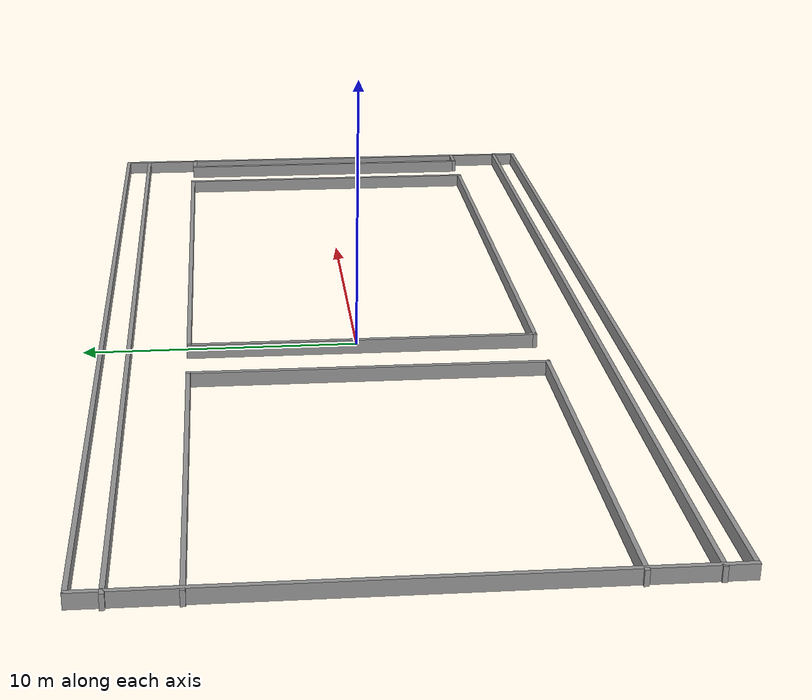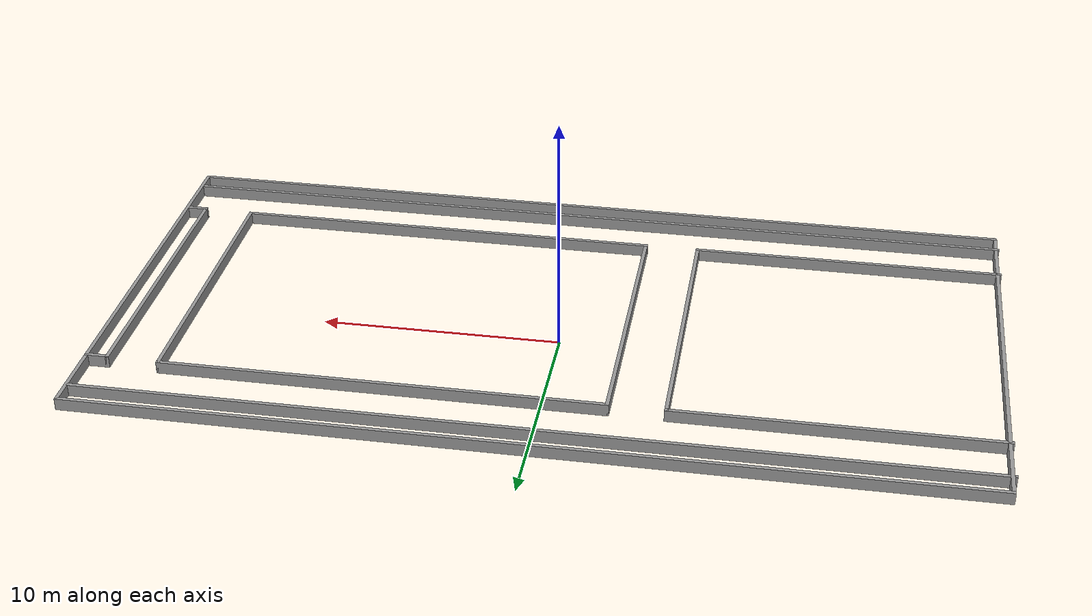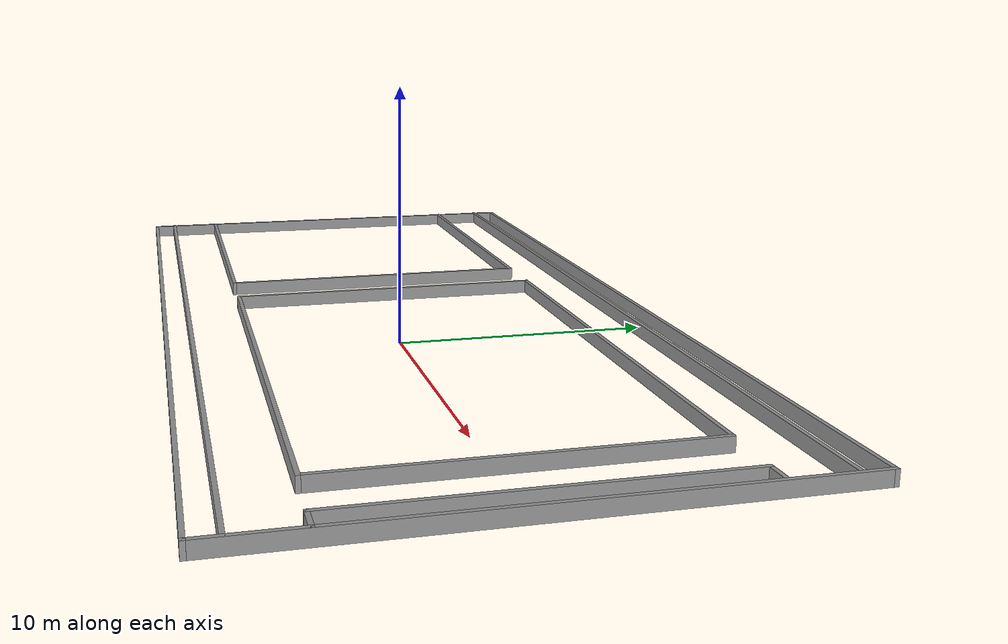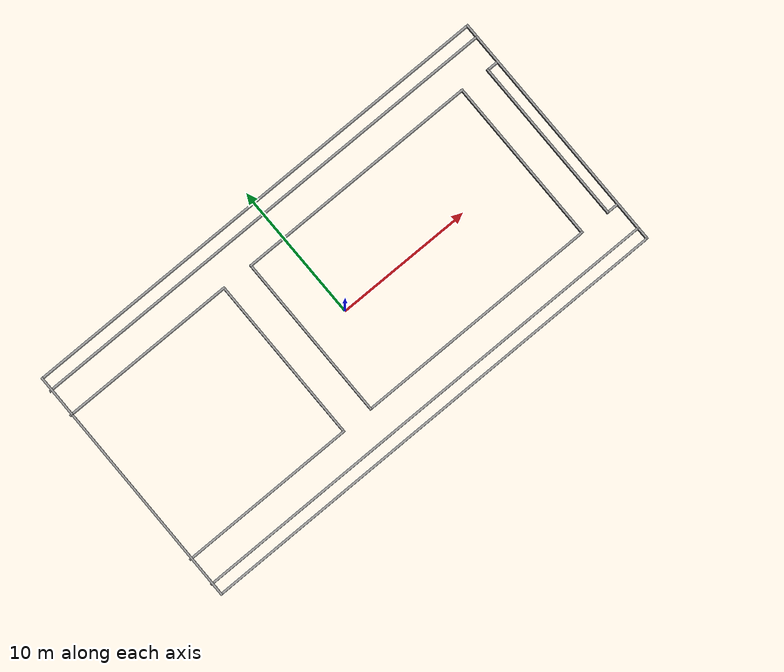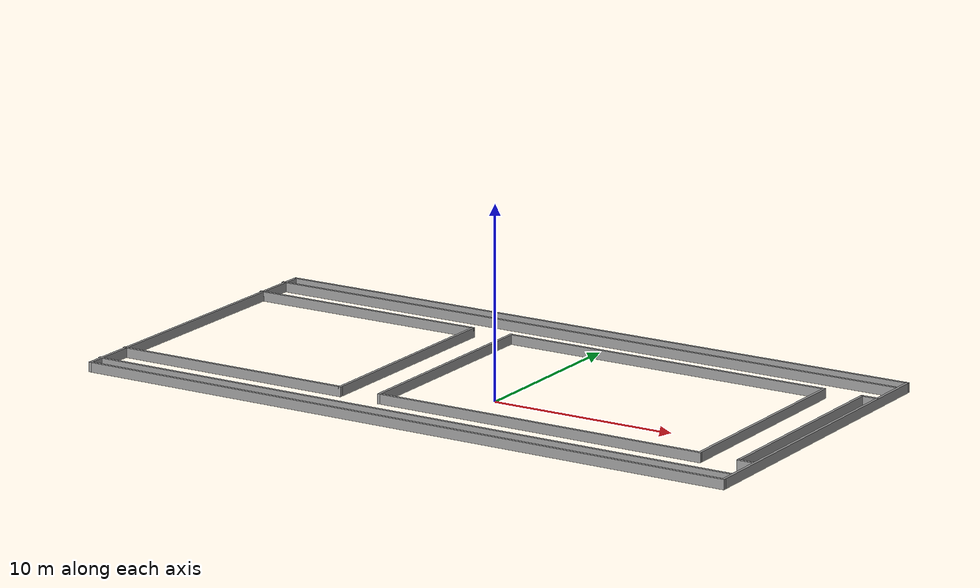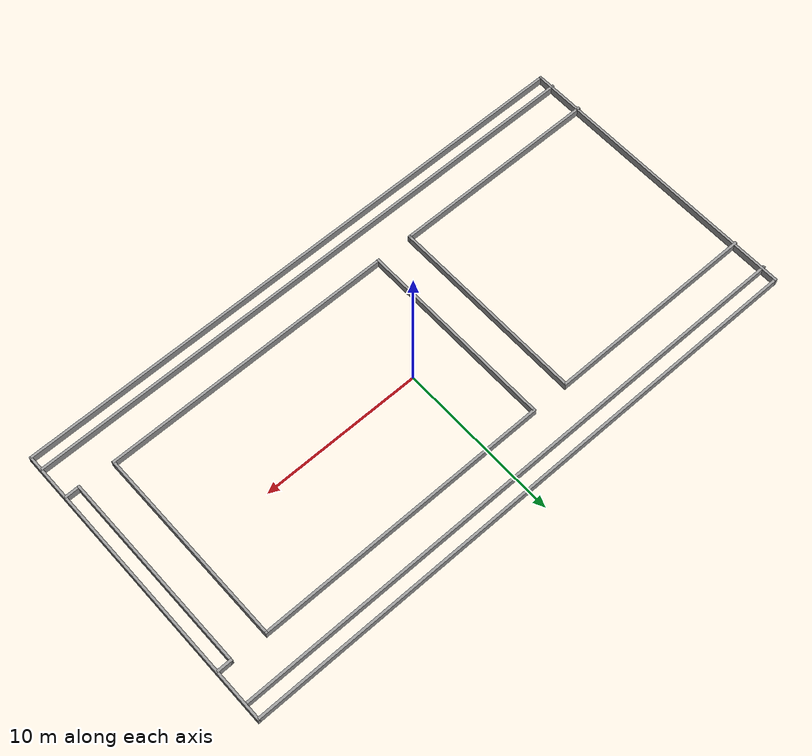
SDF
<?xml version='1.0'?>
<sdf version='1.7'>
  <model name='vfeld.world'>
    <pose>-0.001103 0.05847 0 0 -0 0</pose>
    <link name='Wall_10'>
      <collision name='Wall_10_Collision'>
        <geometry>
          <box>
            <size>18.25 0.15 0.5</size>
          </box>
        </geometry>
        <pose>0 0 1.25 0 -0 0</pose>
      </collision>
      <visual name='Wall_10_Visual'>
        <pose>0 0 1.25 0 -0 0</pose>
        <geometry>
          <box>
            <size>18.25 0.15 0.5</size>
          </box>
        </geometry>
        <material>
          <script>
            <uri>file://media/materials/scripts/gazebo.material</uri>
            <name>Gazebo/Grey</name>
          </script>
          <ambient>1 1 1 1</ambient>
        </material>
        <meta>
          <layer>0</layer>
        </meta>
      </visual>
      <pose>17.9754 0 0 0 -0 -1.5708</pose>
    </link>
    <link name='Wall_11'>
      <collision name='Wall_11_Collision'>
        <geometry>
          <box>
            <size>36 0.15 0.5</size>
          </box>
        </geometry>
        <pose>0 0 1.25 0 -0 0</pose>
      </collision>
      <visual name='Wall_11_Visual'>
        <pose>0 0 1.25 0 -0 0</pose>
        <geometry>
          <box>
            <size>36 0.15 0.5</size>
          </box>
        </geometry>
        <material>
          <script>
            <uri>file://media/materials/scripts/gazebo.material</uri>
            <name>Gazebo/Grey</name>
          </script>
          <ambient>1 1 1 1</ambient>
        </material>
        <meta>
          <layer>0</layer>
        </meta>
      </visual>
      <pose>0.050444 -9.05 0 0 -0 3.14159</pose>
    </link>
    <link name='Wall_12'>
      <collision name='Wall_12_Collision'>
        <geometry>
          <box>
            <size>18.25 0.15 0.5</size>
          </box>
        </geometry>
        <pose>0 0 1.25 0 -0 0</pose>
      </collision>
      <visual name='Wall_12_Visual'>
        <pose>0 0 1.25 0 -0 0</pose>
        <geometry>
          <box>
            <size>18.25 0.15 0.5</size>
          </box>
        </geometry>
        <material>
          <script>
            <uri>file://media/materials/scripts/gazebo.material</uri>
            <name>Gazebo/Grey</name>
          </script>
          <ambient>1 1 1 1</ambient>
        </material>
        <meta>
          <layer>0</layer>
        </meta>
      </visual>
      <pose>-17.8746 0 0 0 -0 1.5708</pose>
    </link>
    <link name='Wall_13'>
      <collision name='Wall_13_Collision'>
        <geometry>
          <box>
            <size>36 0.15 0.5</size>
          </box>
        </geometry>
        <pose>0 0 1.25 0 -0 0</pose>
      </collision>
      <visual name='Wall_13_Visual'>
        <pose>0 0 1.25 0 -0 0</pose>
        <geometry>
          <box>
            <size>36 0.15 0.5</size>
          </box>
        </geometry>
        <material>
          <script>
            <uri>file://media/materials/scripts/gazebo.material</uri>
            <name>Gazebo/Grey</name>
          </script>
          <ambient>1 1 1 1</ambient>
        </material>
        <meta>
          <layer>0</layer>
        </meta>
      </visual>
      <pose>0.050444 9.05 0 0 -0 0</pose>
    </link>
    <link name='Wall_15'>
      <collision name='Wall_15_Collision'>
        <geometry>
          <box>
            <size>36 0.15 0.5</size>
          </box>
        </geometry>
        <pose>0 0 1.25 0 -0 0</pose>
      </collision>
      <visual name='Wall_15_Visual'>
        <pose>0 0 1.25 0 -0 0</pose>
        <geometry>
          <box>
            <size>36 0.15 0.5</size>
          </box>
        </geometry>
        <material>
          <script>
            <uri>file://media/materials/scripts/gazebo.material</uri>
            <name>Gazebo/Grey</name>
          </script>
          <ambient>1 1 1 1</ambient>
        </material>
        <meta>
          <layer>0</layer>
        </meta>
      </visual>
      <pose>-0.050445 8.09916 0 0 -0 0</pose>
    </link>
    <link name='Wall_17'>
      <collision name='Wall_17_Collision'>
        <geometry>
          <box>
            <size>13 0.15 0.5</size>
          </box>
        </geometry>
        <pose>0 0 1.25 0 -0 0</pose>
      </collision>
      <visual name='Wall_17_Visual'>
        <pose>0 0 1.25 0 -0 0</pose>
        <geometry>
          <box>
            <size>13 0.15 0.5</size>
          </box>
        </geometry>
        <material>
          <script>
            <uri>file://media/materials/scripts/gazebo.material</uri>
            <name>Gazebo/Grey</name>
          </script>
          <ambient>1 1 1 1</ambient>
        </material>
        <meta>
          <layer>0</layer>
        </meta>
      </visual>
      <pose>-11.5363 6.04108 0 0 -0 0</pose>
    </link>
    <link name='Wall_18'>
      <collision name='Wall_18_Collision'>
        <geometry>
          <box>
            <size>12.25 0.15 0.5</size>
          </box>
        </geometry>
        <pose>0 0 1.25 0 -0 0</pose>
      </collision>
      <visual name='Wall_18_Visual'>
        <pose>0 0 1.25 0 -0 0</pose>
        <geometry>
          <box>
            <size>12.25 0.15 0.5</size>
          </box>
        </geometry>
        <material>
          <script>
            <uri>file://media/materials/scripts/gazebo.material</uri>
            <name>Gazebo/Grey</name>
          </script>
          <ambient>1 1 1 1</ambient>
        </material>
        <meta>
          <layer>0</layer>
        </meta>
      </visual>
      <pose>-5.11132 -0.008923 0 0 -0 -1.5708</pose>
    </link>
    <link name='Wall_19'>
      <collision name='Wall_19_Collision'>
        <geometry>
          <box>
            <size>13 0.15 0.5</size>
          </box>
        </geometry>
        <pose>0 0 1.25 0 -0 0</pose>
      </collision>
      <visual name='Wall_19_Visual'>
        <pose>0 0 1.25 0 -0 0</pose>
        <geometry>
          <box>
            <size>13 0.15 0.5</size>
          </box>
        </geometry>
        <material>
          <script>
            <uri>file://media/materials/scripts/gazebo.material</uri>
            <name>Gazebo/Grey</name>
          </script>
          <ambient>1 1 1 1</ambient>
        </material>
        <meta>
          <layer>0</layer>
        </meta>
      </visual>
      <pose>-11.5363 -6.05892 0 0 -0 3.14159</pose>
    </link>
    <link name='Wall_21'>
      <collision name='Wall_21_Collision'>
        <geometry>
          <box>
            <size>36 0.15 0.5</size>
          </box>
        </geometry>
        <pose>0 0 1.25 0 -0 0</pose>
      </collision>
      <visual name='Wall_21_Visual'>
        <pose>0 0 1.25 0 -0 0</pose>
        <geometry>
          <box>
            <size>36 0.15 0.5</size>
          </box>
        </geometry>
        <material>
          <script>
            <uri>file://media/materials/scripts/gazebo.material</uri>
            <name>Gazebo/Grey</name>
          </script>
          <ambient>1 1 1 1</ambient>
        </material>
        <meta>
          <layer>0</layer>
        </meta>
      </visual>
      <pose>-0.01293 -8.15911 0 0 -0 0</pose>
    </link>
    <link name='Wall_23'>
      <collision name='Wall_23_Collision'>
        <geometry>
          <box>
            <size>1 0.15 0.5</size>
          </box>
        </geometry>
        <pose>0 0 1.25 0 -0 0</pose>
      </collision>
      <visual name='Wall_23_Visual'>
        <pose>0 0 1.25 0 -0 0</pose>
        <geometry>
          <box>
            <size>1 0.15 0.5</size>
          </box>
        </geometry>
        <material>
          <script>
            <uri>file://media/materials/scripts/gazebo.material</uri>
            <name>Gazebo/Grey</name>
          </script>
          <ambient>1 1 1 1</ambient>
        </material>
        <meta>
          <layer>0</layer>
        </meta>
      </visual>
      <pose>17.5469 -6.12383 0 0 -0 3.14159</pose>
    </link>
    <link name='Wall_24'>
      <collision name='Wall_24_Collision'>
        <geometry>
          <box>
            <size>12.25 0.15 0.5</size>
          </box>
        </geometry>
        <pose>0 0 1.25 0 -0 0</pose>
      </collision>
      <visual name='Wall_24_Visual'>
        <pose>0 0 1.25 0 -0 0</pose>
        <geometry>
          <box>
            <size>12.25 0.15 0.5</size>
          </box>
        </geometry>
        <material>
          <script>
            <uri>file://media/materials/scripts/gazebo.material</uri>
            <name>Gazebo/Grey</name>
          </script>
          <ambient>1 1 1 1</ambient>
        </material>
        <meta>
          <layer>0</layer>
        </meta>
      </visual>
      <pose>17.1219 -0.07383 0 0 -0 1.5708</pose>
    </link>
    <link name='Wall_25'>
      <collision name='Wall_25_Collision'>
        <geometry>
          <box>
            <size>1 0.15 0.5</size>
          </box>
        </geometry>
        <pose>0 0 1.25 0 -0 0</pose>
      </collision>
      <visual name='Wall_25_Visual'>
        <pose>0 0 1.25 0 -0 0</pose>
        <geometry>
          <box>
            <size>1 0.15 0.5</size>
          </box>
        </geometry>
        <material>
          <script>
            <uri>file://media/materials/scripts/gazebo.material</uri>
            <name>Gazebo/Grey</name>
          </script>
          <ambient>1 1 1 1</ambient>
        </material>
        <meta>
          <layer>0</layer>
        </meta>
      </visual>
      <pose>17.5469 5.97617 0 0 -0 0</pose>
    </link>
    <link name='Wall_27'>
      <collision name='Wall_27_Collision'>
        <geometry>
          <box>
            <size>12.25 0.15 0.5</size>
          </box>
        </geometry>
        <pose>0 0 1.25 0 -0 0</pose>
      </collision>
      <visual name='Wall_27_Visual'>
        <pose>0 0 1.25 0 -0 0</pose>
        <geometry>
          <box>
            <size>12.25 0.15 0.5</size>
          </box>
        </geometry>
        <material>
          <script>
            <uri>file://media/materials/scripts/gazebo.material</uri>
            <name>Gazebo/Grey</name>
          </script>
          <ambient>1 1 1 1</ambient>
        </material>
        <meta>
          <layer>0</layer>
        </meta>
      </visual>
      <pose>15.0009 -0.008923 0 0 -0 -1.5708</pose>
    </link>
    <link name='Wall_28'>
      <collision name='Wall_28_Collision'>
        <geometry>
          <box>
            <size>18 0.15 0.5</size>
          </box>
        </geometry>
        <pose>0 0 1.25 0 -0 0</pose>
      </collision>
      <visual name='Wall_28_Visual'>
        <pose>0 0 1.25 0 -0 0</pose>
        <geometry>
          <box>
            <size>18 0.15 0.5</size>
          </box>
        </geometry>
        <material>
          <script>
            <uri>file://media/materials/scripts/gazebo.material</uri>
            <name>Gazebo/Grey</name>
          </script>
          <ambient>1 1 1 1</ambient>
        </material>
        <meta>
          <layer>0</layer>
        </meta>
      </visual>
      <pose>6.0759 -6.05892 0 0 -0 3.14159</pose>
    </link>
    <link name='Wall_29'>
      <collision name='Wall_29_Collision'>
        <geometry>
          <box>
            <size>12.25 0.15 0.5</size>
          </box>
        </geometry>
        <pose>0 0 1.25 0 -0 0</pose>
      </collision>
      <visual name='Wall_29_Visual'>
        <pose>0 0 1.25 0 -0 0</pose>
        <geometry>
          <box>
            <size>12.25 0.15 0.5</size>
          </box>
        </geometry>
        <material>
          <script>
            <uri>file://media/materials/scripts/gazebo.material</uri>
            <name>Gazebo/Grey</name>
          </script>
          <ambient>1 1 1 1</ambient>
        </material>
        <meta>
          <layer>0</layer>
        </meta>
      </visual>
      <pose>-2.8491 -0.008923 0 0 -0 1.5708</pose>
    </link>
    <link name='Wall_30'>
      <collision name='Wall_30_Collision'>
        <geometry>
          <box>
            <size>18 0.15 0.5</size>
          </box>
        </geometry>
        <pose>0 0 1.25 0 -0 0</pose>
      </collision>
      <visual name='Wall_30_Visual'>
        <pose>0 0 1.25 0 -0 0</pose>
        <geometry>
          <box>
            <size>18 0.15 0.5</size>
          </box>
        </geometry>
        <material>
          <script>
            <uri>file://media/materials/scripts/gazebo.material</uri>
            <name>Gazebo/Grey</name>
          </script>
          <ambient>1 1 1 1</ambient>
        </material>
        <meta>
          <layer>0</layer>
        </meta>
      </visual>
      <pose>6.0759 6.04108 0 0 -0 0</pose>
    </link>
    <static>1</static>
  </model>
</sdf>
